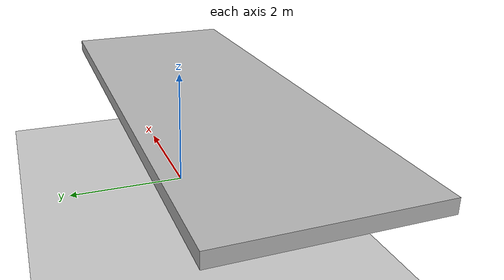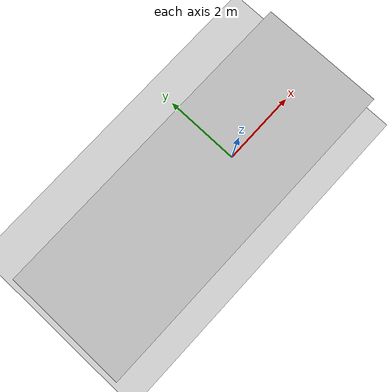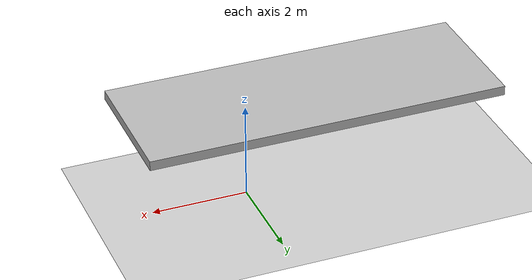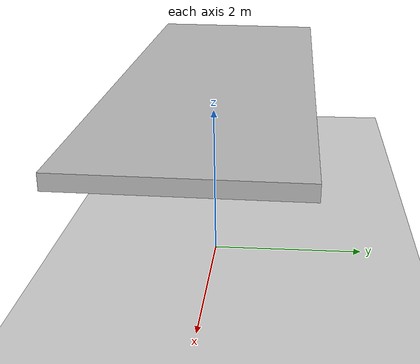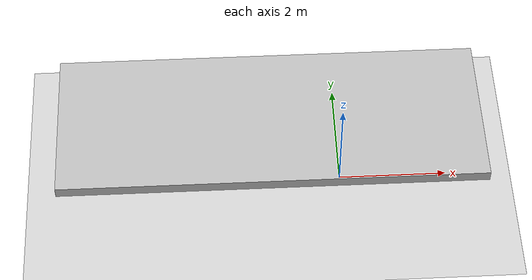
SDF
<sdf version="1.4">
 <world name="default">
  <light name="sun" type="directional">
   <pose>0 0 10 0 -0 0</pose>
   <diffuse>0.8 0.8 0.8 1</diffuse>
   <specular>0.2 0.2 0.2 1</specular>
   <attenuation>
    <range>1000</range>
    <constant>0.9</constant>
    <linear>0.01</linear>
    <quadratic>0.001</quadratic>
   </attenuation>
   <direction>-0.5 0.1 -0.9</direction>
  </light>
  <model name="ground_plane">
   <static>1</static>
   <link name="link">
    <collision name="collision">
     <geometry><plane><normal>0 0 1</normal><size>100 100</size></plane></geometry>
     <surface><friction><ode><mu>100</mu><mu2>50</mu2></ode></friction></surface>
    </collision>
    <visual name="visual">
     <cast_shadows>0</cast_shadows>
     <geometry><plane><normal>0 0 1</normal><size>100 100</size></plane></geometry>
     <material>
      <script><uri>file://media/materials/scripts/gazebo.material</uri><name>Gazebo/Grey</name></script>
     </material>
    </visual>
    <velocity_decay><linear>0</linear><angular>0</angular></velocity_decay>
   </link>
  </model>
  <physics type="ode">
   <max_step_size>0.001</max_step_size>
   <real_time_factor>1</real_time_factor>
   <real_time_update_rate>1000</real_time_update_rate>
   <gravity>0 0 -9.8</gravity>
  </physics>
  <scene><ambient>0.4 0.4 0.4 1</ambient><background>0.7 0.7 0.7 1</background><shadows>1</shadows></scene>
  <spherical_coordinates>
   <surface_model>EARTH_WGS84</surface_model>
   <latitude_deg>0</latitude_deg>
   <longitude_deg>0</longitude_deg>
   <elevation>0</elevation>
   <heading_deg>0</heading_deg>
  </spherical_coordinates>
  <model name="pattern_wall_1">
   <static>1</static>
   <link name="link">
    <pose>0 0 1.4 0 -0 0</pose>
    <collision name="collision"><geometry><box><size>7.5 0.2 2.8</size></box></geometry></collision>
    <visual name="visual">
     <cast_shadows>0</cast_shadows>
     <geometry><box><size>7.5 0.2 2.8</size></box></geometry>
     <material>
      <script>
       <uri>model://pattern_wall_1/materials/scripts</uri>
       <uri>model://pattern_wall_1/materials/textures</uri>
       <name>vrc/pattern_wall_1</name>
      </script>
     </material>
    </visual>
    <velocity_decay><linear>0</linear><angular>0</angular></velocity_decay>
   </link>
   <pose>-1.3166 1.31344 1.98728 1.56129 -0 0</pose>
  </model>
 </world>
</sdf>
